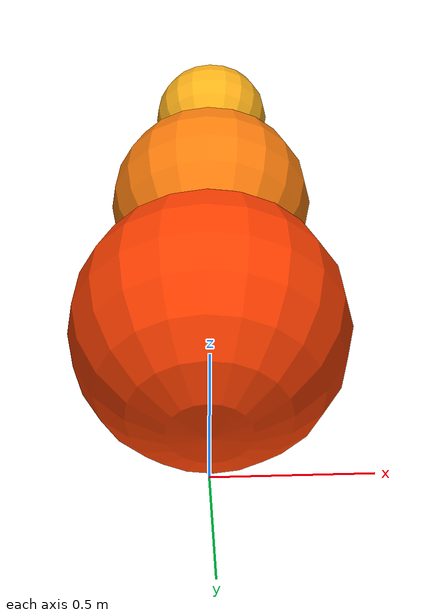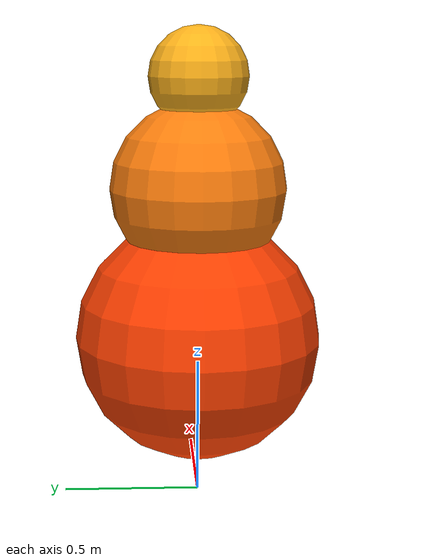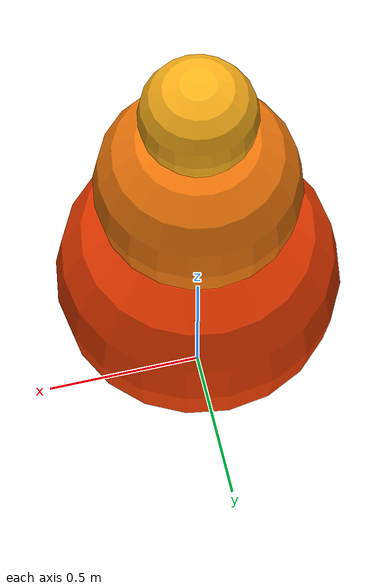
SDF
<?xml version="1.0"?>
<sdf version="1.7">
  <model name="simple_fire">
    <static>true</static>
    <link name="link">
      <temperature>900</temperature>
      <!-- Tall thin collision so lidar can see the fire column -->
      <collision name="collision">
        <pose>0 0 1.0 0 0 0</pose>
        <geometry>
          <cylinder>
            <radius>0.35</radius>
            <length>2.0</length>
          </cylinder>
        </geometry>
      </collision>
      <visual name="flame_base">
        <pose>0 0 0.6 0 0 0</pose>
        <cast_shadows>false</cast_shadows>
        <geometry>
          <sphere>
            <radius>0.45</radius>
          </sphere>
        </geometry>
        <material>
          <ambient>1.0 0.15 0.0 1</ambient>
          <diffuse>1.0 0.25 0.0 1</diffuse>
          <emissive>0.9 0.15 0.0 1</emissive>
        </material>
      </visual>
      <visual name="flame_mid">
        <pose>0 0 1.15 0 0 0</pose>
        <cast_shadows>false</cast_shadows>
        <geometry>
          <sphere>
            <radius>0.32</radius>
          </sphere>
        </geometry>
        <material>
          <ambient>1.0 0.45 0.0 1</ambient>
          <diffuse>1.0 0.5 0.05 1</diffuse>
          <emissive>1.0 0.35 0.0 1</emissive>
        </material>
      </visual>
      <visual name="flame_tip">
        <pose>0 0 1.55 0 0 0</pose>
        <cast_shadows>false</cast_shadows>
        <geometry>
          <sphere>
            <radius>0.18</radius>
          </sphere>
        </geometry>
        <material>
          <ambient>1.0 0.75 0.1 1</ambient>
          <diffuse>1.0 0.7 0.1 1</diffuse>
          <emissive>1.0 0.55 0.05 1</emissive>
        </material>
      </visual>
    </link>
  </model>
</sdf>
